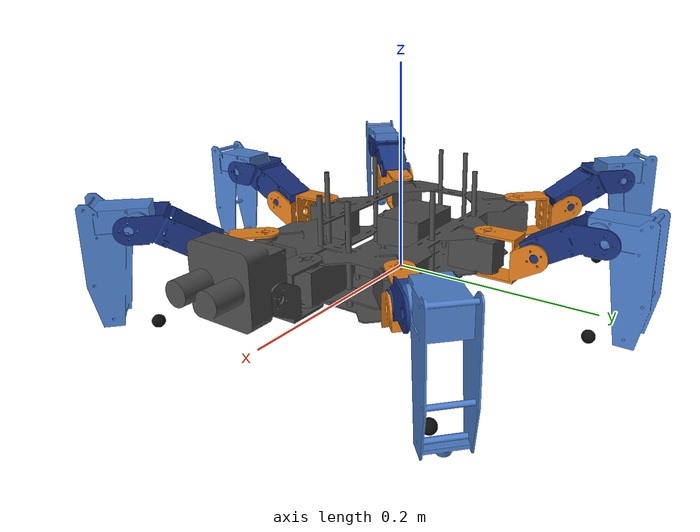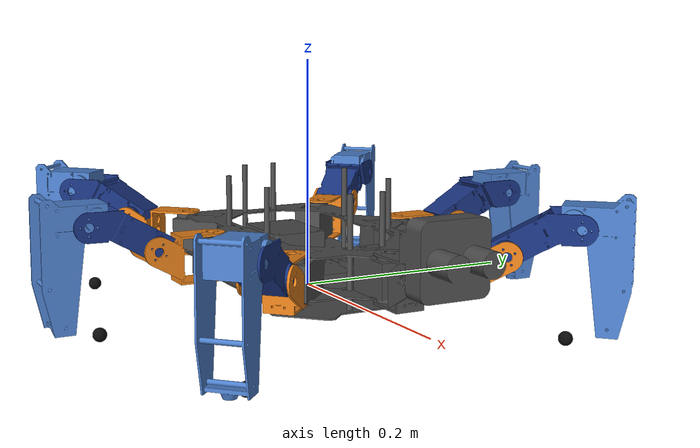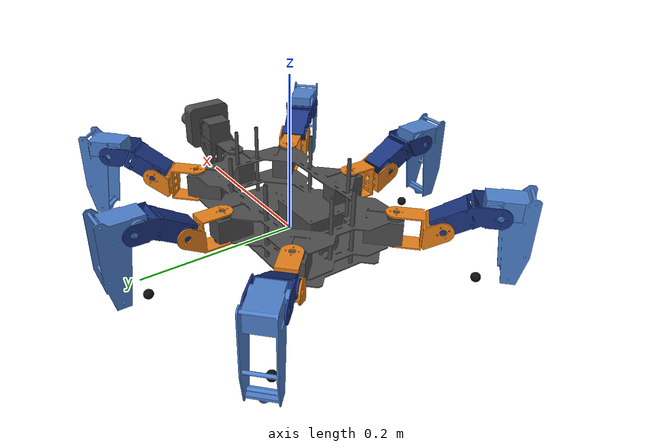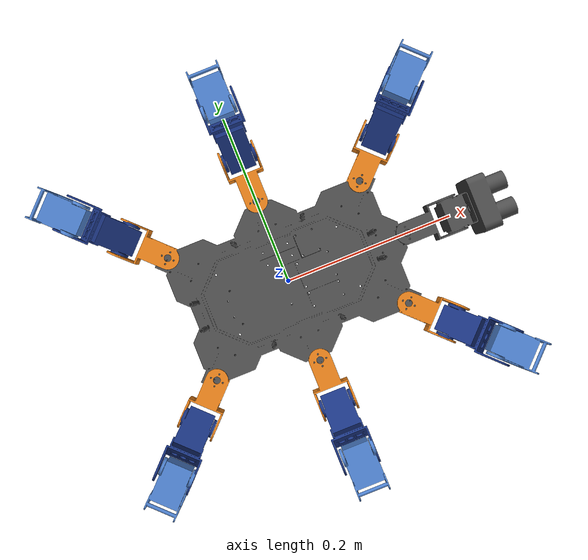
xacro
<?xml version="1.0"?>
<robot xmlns:xacro="http://www.ros.org/wiki/xacro" name="nikita">
  <xacro:include filename="$(find nikita_description)/urdf/materials.xacro"/>
  <xacro:include filename="$(find nikita_description)/urdf/mesh_leg.xacro"/>
  <xacro:include filename="$(find nikita_description)/urdf/ros2_control.xacro"/>
  <xacro:property name="coxa_length" value="0.050"/>
  <xacro:property name="femur_length" value="0.063"/>
  <xacro:property name="tibia_length" value="0.099"/>
  <xacro:property name="coxa_height" value="0.045"/>
  <xacro:arg name="use_sim" default="false"/>

  <xacro:if value="$(arg use_sim)">
    <gazebo><plugin filename="gz_ros2_control-system" name="gz_ros2_control::GazeboSimROS2ControlPlugin"><parameters>$(find nikita_gazebo)/config/joint_controllers.yaml</parameters></plugin></gazebo>
    <xacro:nikita_ros2_control/>
  </xacro:if>

  <link name="base_link">
    <visual><origin xyz="0 0 0"/><geometry><mesh filename="package://nikita_description/meshes/assembly_body_servo.stl" scale="0.001 0.001 0.001"/></geometry><material name="dark_gray"/></visual>
    <collision><origin xyz="0 0 0.020"/><geometry><box size="0.240 0.180 0.025"/></geometry></collision>
    <inertial><origin xyz="0 0 0.045"/><mass value="0.80"/><inertia ixx="0.003" ixy="0" ixz="0" iyy="0.004" iyz="0" izz="0.005"/></inertial>
  </link>

  <xacro:mesh_hexapod_leg prefix="right_front" cx="0.109" cy="0.068" psi_deg="45.0"/>
  <xacro:mesh_hexapod_leg prefix="right_mid" cx="0.000" cy="0.088" psi_deg="90.0"/>
  <xacro:mesh_hexapod_leg prefix="right_back" cx="-0.109" cy="0.068" psi_deg="135.0"/>
  <xacro:mesh_hexapod_leg prefix="left_front" cx="0.109" cy="-0.068" psi_deg="-45.0"/>
  <xacro:mesh_hexapod_leg prefix="left_mid" cx="0.000" cy="-0.088" psi_deg="-90.0"/>
  <xacro:mesh_hexapod_leg prefix="left_back" cx="-0.109" cy="-0.068" psi_deg="-135.0"/>

  <joint name="head_yaw_joint" type="revolute">
    <parent link="base_link"/>
    <child link="head_yaw_link"/>
    <origin xyz="0.140175 0 0.04825"/>
    <axis xyz="0 0 -1"/>
    <limit lower="${-30*pi/180}" upper="${30*pi/180}" effort="1.5" velocity="4.0"/>
  </joint>
  <link name="head_yaw_link">
    <visual>
      <origin xyz="0.0295 0 -0.0143" rpy="${90*pi/180} 0 ${-90*pi/180}"/>
      <geometry><mesh filename="package://nikita_description/meshes/assembly_coxa.stl" scale="0.001 0.001 0.001"/></geometry>
      <material name="dark_gray"/>
    </visual>
    <inertial><mass value="0.001"/><inertia ixx="1e-8" ixy="0" ixz="0" iyy="1e-8" iyz="0" izz="1e-8"/></inertial>
  </link>
  <joint name="head_pitch_joint" type="revolute">
    <parent link="head_yaw_link"/>
    <child link="head_pitch_link"/>
    <origin xyz="0.05313138535886 0.0143 -0.00338993770857"/>
    <axis xyz="0 -1 0"/>
    <limit lower="${-20*pi/180}" upper="${20*pi/180}" effort="1.5" velocity="4.0"/>
  </joint>
  <link name="head_pitch_link">
    <visual>
      <origin xyz="0 0 0.035" rpy="${180*pi/180} 0 0"/>
      <geometry><mesh filename="package://nikita_description/meshes/assembly_head.stl" scale="0.001 0.001 0.001"/></geometry>
      <material name="dark_gray"/>
    </visual>
    <inertial><mass value="0.001"/><inertia ixx="1e-8" ixy="0" ixz="0" iyy="1e-8" iyz="0" izz="1e-8"/></inertial>
  </link>
</robot>

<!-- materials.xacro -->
<robot xmlns:xacro="http://www.ros.org/wiki/xacro">

  <material name="dark_gray">
    <color rgba="0.3 0.3 0.3 1.0"/>
  </material>

  <material name="creamy_white">
    <color rgba="0.94 0.91 0.82 1.0"/>
  </material>

  <material name="orange">
    <color rgba="0.9 0.5 0.1 1.0"/>
  </material>

  <material name="dark_blue">
    <color rgba="0.1 0.2 0.5 1.0"/>
  </material>

  <material name="light_blue">
    <color rgba="0.3 0.5 0.8 1.0"/>
  </material>

  <material name="black">
    <color rgba="0.05 0.05 0.05 1.0"/>
  </material>

  <material name="red">
    <color rgba="0.8 0.1 0.1 1.0"/>
  </material>

</robot>

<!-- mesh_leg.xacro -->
<robot xmlns:xacro="http://www.ros.org/wiki/xacro">

  <xacro:macro name="mesh_hexapod_leg" params="prefix cx cy psi_deg">
    <xacro:property name="mount_yaw" value="${psi_deg * pi / 180.0 - pi / 2.0}"/>
    <xacro:property name="mesh_scale" value="0.001 0.001 0.001"/>

    <joint name="${prefix}_coxa_joint" type="revolute">
      <parent link="base_link"/>
      <child link="${prefix}_coxa_link"/>
      <origin xyz="${cx} ${cy} ${coxa_height}" rpy="0 0 ${mount_yaw}"/>
      <axis xyz="0 0 -1"/>
      <limit lower="${-60 * pi / 180}" upper="${60 * pi / 180}" effort="3.0" velocity="6.0"/>
      <dynamics damping="0.1" friction="0.05"/>
    </joint>
    <link name="${prefix}_coxa_link">
      <visual>
        <origin xyz="0 0.035 -0.01" rpy="${pi / 2.0} 0 0"/>
        <geometry><mesh filename="package://nikita_description/meshes/assembly_coxa.stl" scale="${mesh_scale}"/></geometry>
        <material name="orange"/>
      </visual>
      <collision><origin xyz="0 ${coxa_length / 2.0} 0" rpy="${pi / 2.0} 0 0"/><geometry><box size="0.030 0.050 0.045"/></geometry></collision>
      <inertial><origin xyz="0 ${coxa_length / 2.0} 0"/><mass value="0.12"/><inertia ixx="3.0e-05" ixy="0" ixz="0" iyy="3.0e-05" iyz="0" izz="3.0e-05"/></inertial>
    </link>

    <joint name="${prefix}_femur_joint" type="revolute">
      <parent link="${prefix}_coxa_link"/><child link="${prefix}_femur_link"/>
      <origin xyz="0 ${coxa_length} 0" rpy="${30 * pi / 180} 0 0"/><axis xyz="1 0 0"/>
      <limit lower="${-30 * pi / 180}" upper="${90 * pi / 180}" effort="3.0" velocity="6.0"/>
      <dynamics damping="0.1" friction="0.05"/>
    </joint>
    <link name="${prefix}_femur_link">
      <visual>
        <origin xyz="0.015 0.043 0" rpy="${-90 * pi / 180} ${-90 * pi / 180} ${180 * pi / 180}"/>
        <geometry><mesh filename="package://nikita_description/meshes/assembly_femur.stl" scale="${mesh_scale}"/></geometry>
        <material name="dark_blue"/>
      </visual>
      <collision><origin xyz="0 ${femur_length / 2.0} 0" rpy="${-pi / 2.0} 0 0"/><geometry><box size="0.030 0.063 0.045"/></geometry></collision>
      <inertial><origin xyz="0 ${femur_length / 2.0} 0"/><mass value="0.12"/><inertia ixx="4.0e-05" ixy="0" ixz="0" iyy="4.0e-05" iyz="0" izz="4.0e-05"/></inertial>
    </link>

    <joint name="${prefix}_tibia_joint" type="revolute">
      <parent link="${prefix}_femur_link"/><child link="${prefix}_tibia_link"/>
      <origin xyz="0 ${femur_length} 0" rpy="${-120 * pi / 180} 0 0"/><axis xyz="1 0 0"/>
      <limit lower="${-90 * pi / 180}" upper="${90 * pi / 180}" effort="3.0" velocity="6.0"/>
      <dynamics damping="0.1" friction="0.05"/>
    </joint>
    <link name="${prefix}_tibia_link">
      <visual>
        <!-- Rotate the CAD mesh by 90 degrees about the servo axis (link X),
             including its offset from that axis, to match assembly_complete.py. -->
        <origin xyz="-0.015 0 0.04" rpy="${-180 * pi / 180} 0 ${90 * pi / 180}"/>
        <geometry><mesh filename="package://nikita_description/meshes/assembly_tibia.stl" scale="${mesh_scale}"/></geometry>
        <material name="light_blue"/>
      </visual>
      <collision><origin xyz="0 ${tibia_length / 2.0} 0" rpy="${-pi / 2.0} 0 0"/><geometry><box size="0.025 0.099 0.040"/></geometry></collision>
      <inertial><origin xyz="0 ${tibia_length / 2.0} 0"/><mass value="0.10"/><inertia ixx="4.0e-05" ixy="0" ixz="0" iyy="4.0e-05" iyz="0" izz="4.0e-05"/></inertial>
    </link>

    <joint name="${prefix}_foot_joint" type="fixed"><parent link="${prefix}_tibia_link"/><child link="${prefix}_foot"/><origin xyz="0 ${tibia_length} 0"/></joint>
    <link name="${prefix}_foot">
      <visual><geometry><sphere radius="0.006"/></geometry><material name="black"/></visual>
      <collision><geometry><sphere radius="0.006"/></geometry></collision>
      <inertial><mass value="0.005"/><inertia ixx="7.2e-08" ixy="0" ixz="0" iyy="7.2e-08" iyz="0" izz="7.2e-08"/></inertial>
    </link>
    <gazebo reference="${prefix}_foot"><mu1>1.0</mu1><mu2>1.0</mu2></gazebo>
  </xacro:macro>
</robot>
